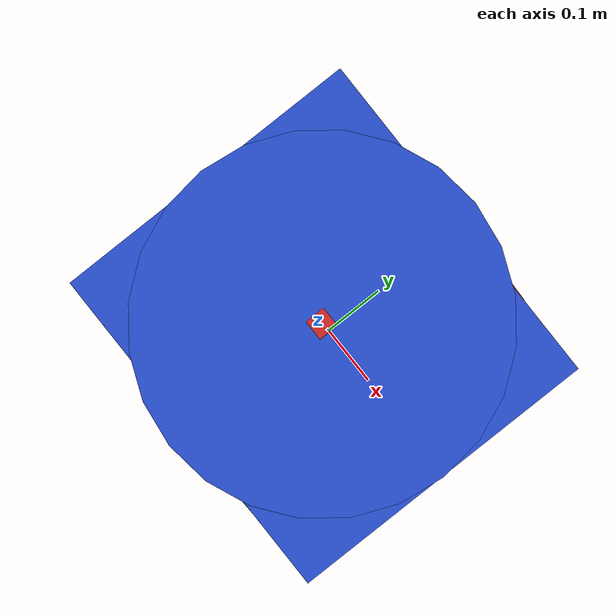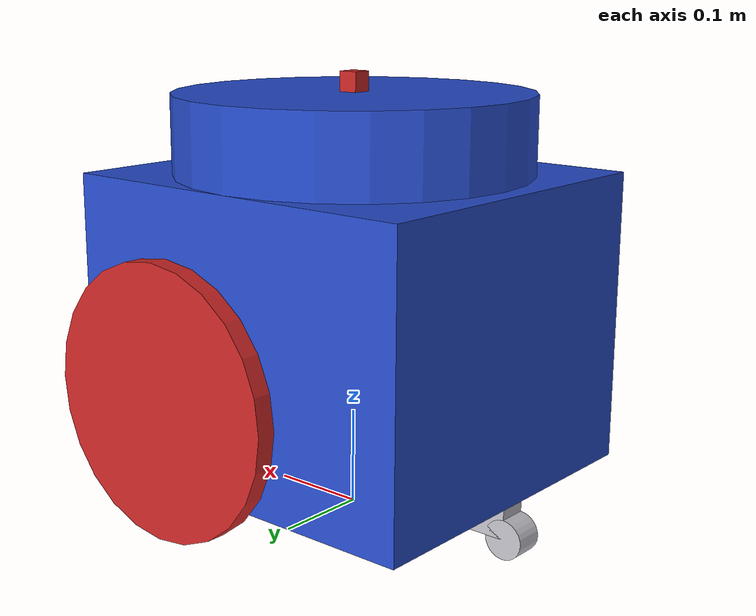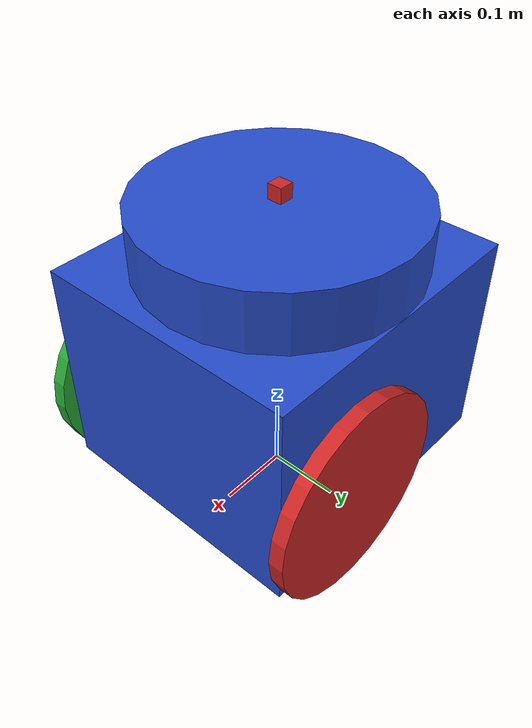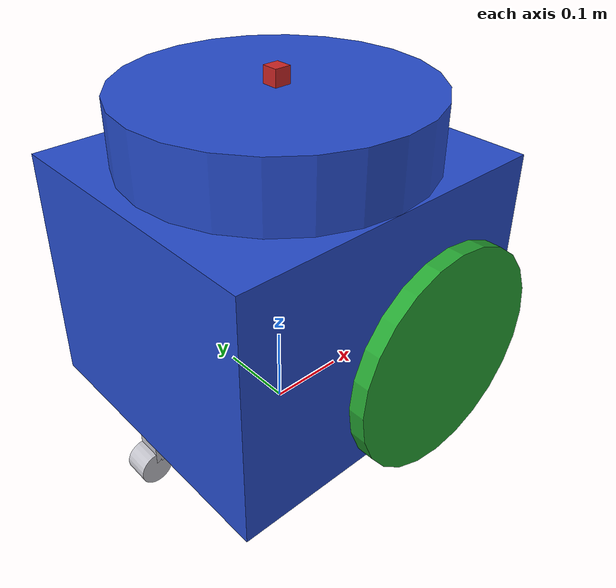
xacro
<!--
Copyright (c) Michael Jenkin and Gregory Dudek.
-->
<?xml version="1.0"?>

<robot name="$(arg name)" xmlns:xacro="http://www.ros.org/wiki/xacro">

  <!-- Define the robot -->
  <xacro:property name="robot_base_width" value="0.36" />
  <xacro:property name="robot_base_length" value="0.4" />
  <xacro:property name="robot_base_height" value="0.3" />
  <xacro:property name="robot_base_mass" value="4.5" />
  <xacro:property name="robot_sonar_radius" value="0.18" />
  <xacro:property name="robot_sonar_height" value="0.08" />
  <xacro:property name="robot_wheel_zoffset" value="-0.06" />
  <xacro:property name="robot_wheel_xoffset" value="0.08" />
  <xacro:property name="robot_wheel_radius" value="0.14" />
  <xacro:property name="robot_wheel_width" value="0.02" />
  <xacro:property name="robot_caster_link_height" value="0.03" />
  <xacro:property name="robot_caster_link_width" value="0.03" />
  <xacro:property name="robot_caster_link_length" value="0.05" />
  <xacro:property name="robot_caster_link_offset" value="-0.025" />
  <xacro:property name="robot_caster_joint_offset" value="-0.15" />
  <xacro:property name="robot_caster_wheel_radius" value="0.02" />
  <xacro:property name="imu_width" value="0.02" />
  <xacro:property name="imu_height" value="0.02" />
  <xacro:property name="imu_length" value="0.02" />

  <!-- Import colors defined externally -->
  <xacro:include filename="$(find cpmr_ch4)/colors.xacro" />

  <!-- Define macros to make moments of inertia easier -->
  <xacro:macro name="I_cylinder" params="m r h">
    <inertial>
      <mass value="${m}" />
      <inertia  ixx="${m*(3*r*r+h*h)/12}" iyy="${m*(3*r*r+h*h)/12}" izz="${m*r*r/2}"
              ixy = "0" ixz = "0" iyz = "0" />
    </inertial>
  </xacro:macro>
  <xacro:macro name="I_cuboid" params="m x y z">
    <inertial>
      <mass value="${m}" />
      <inertia  ixx="${m*(y*y+z*z)/12}" iyy="${m*(x*x+z*z)/12}" izz="${m*(x*x+z*z)/12}"
                ixy = "0" ixz = "0" iyz = "0" />
    </inertial>
  </xacro:macro>

  <!-- robot footprint -->
  <link name="base_footprint">
  </link>

  <!-- Base -->
  <gazebo reference="base_link">
    <material>Gazebo/Blue</material>
  </gazebo>
  <link name="base_link">
    <visual>
      <geometry>
        <box size="${robot_base_length} ${robot_base_width} ${robot_base_height}" />
      </geometry>
      <material name="blue"/>
    </visual>
    <collision>
      <geometry>
        <box size="${robot_base_length} ${robot_base_width} ${robot_base_height}" />
      </geometry>
    </collision>
    <xacro:I_cuboid m="8.4" x="${robot_base_length}" y="${robot_base_width}" z="${robot_base_height}" />
  </link>

  <!-- Sonar unit -->
  <gazebo reference="sonar_link">
    <material>Gazebo/Blue</material>
  </gazebo>
  <link name="sonar_link">
    <visual>
      <geometry>
        <cylinder length="${robot_sonar_height}" radius="${robot_sonar_radius}" />
      </geometry>
      <material name="blue"/>
    </visual>
    <collision>
      <geometry>
        <cylinder length="${robot_sonar_height}" radius="${robot_sonar_radius}" />
      </geometry>
    </collision>
    <xacro:I_cylinder m="8.4" r="${robot_sonar_radius}" h="${robot_sonar_height}" />
  </link>

  <joint name="base_joint" type="fixed">
    <origin xyz="0.0 0.0 ${robot_wheel_radius-robot_wheel_zoffset}" rpy="0.0 0.0 0.0" />
    <parent link="base_footprint" />
    <child link="base_link" />
    <axis xyz="0 0 1" />
  </joint>

  <joint name="sonar_joint" type="fixed">
    <origin xyz="0.0 0.0 ${robot_base_height/2+robot_sonar_height/2}" rpy="0.0 0.0 0.0" />
    <parent link="base_link" />
    <child link="sonar_link" />
    <axis xyz="0 0 1" />
  </joint>

  <!-- Left wheel -->
  <gazebo reference="left_wheel_link">
    <material>Gazebo/Red</material>
  </gazebo>
  <link name="left_wheel_link">
    <visual>
      <geometry>
        <cylinder length="${robot_wheel_width}" radius="${robot_wheel_radius}" />
      </geometry>
      <material name="red" />
    </visual>
    <collision>
      <geometry>
        <cylinder length="${robot_wheel_width}" radius="${robot_wheel_radius}" />
      </geometry>
    </collision>
    <xacro:I_cylinder m="0.1" r="${robot_wheel_radius}" h="${robot_wheel_width}" />
  </link>

  <joint name="left_wheel_joint" type="continuous">
    <axis xyz="0 0 1" />
    <parent link="base_link" />
    <child link="left_wheel_link" />
    <origin rpy="-1.5708 0 0" xyz="${robot_wheel_xoffset} ${robot_base_width/2+robot_wheel_width/2} ${robot_wheel_zoffset}" />
  </joint>

  <!-- Right wheel -->
  <gazebo reference="right_wheel_link">
    <material>Gazebo/Green</material>
  </gazebo>
  <link name="right_wheel_link">
    <visual>
      <geometry>
        <cylinder length="${robot_wheel_width}" radius="${robot_wheel_radius}" />
      </geometry>
      <material name="green" />
    </visual>
    <collision>
      <geometry>
        <cylinder length="${robot_wheel_width}" radius="${robot_wheel_radius}" />
      </geometry>
    </collision>
    <xacro:I_cylinder m="0.1" r="${robot_wheel_radius}" h="${robot_wheel_width}" />
  </link>

  <joint name="right_wheel_joint" type="continuous">
    <axis xyz="0 0 1" />
    <parent link="base_link" />
    <child link="right_wheel_link" />
    <origin rpy="-1.5708 0 0" xyz="${robot_wheel_xoffset} ${-robot_base_width/2-robot_wheel_width/2} ${robot_wheel_zoffset}" />
  </joint>

  <!-- Caster 'wheel' structure -->
  <gazebo reference="caster_link">
    <material>Gazebo/Silver</material>
  </gazebo>

  <link name="caster_link">
    <visual>
      <origin xyz="${robot_caster_link_length/2} 0 0" rpy="0 0 0" />
      <geometry>
        <box size="${robot_caster_link_length} ${robot_caster_link_width} ${robot_caster_link_height}" />
      </geometry>
      <material name="silver"/>
    </visual>
    <collision>
      <origin xyz="${robot_caster_link_length/2} 0 0" rpy="0 0 0" />
      <geometry>
        <box size="${robot_caster_link_length} ${robot_caster_link_width} ${robot_caster_link_height}" />
      </geometry>
    </collision>
    <xacro:I_cuboid m="0.1" x="${robot_caster_link_length}" y="${robot_caster_link_width}" z="${robot_caster_link_height}" />
  </link>

  <joint name="caster_joint" type="continuous">
    <axis xyz="0 0 1" />
    <parent link="base_link" />
    <child link="caster_link" />
    <origin rpy="0 0 3.1415" xyz="${robot_caster_joint_offset} 0 ${-robot_base_height/2-robot_caster_link_height/2}" />
  </joint>

  <!-- caster wheel -->
  <gazebo reference="caster_wheel_link">
    <material>Gazebo/Silver</material>
  </gazebo>
  <link name="caster_wheel_link">
    <visual>
      <geometry>
        <cylinder length="${robot_caster_link_height}" radius="${robot_caster_wheel_radius}" />
      </geometry>
      <material name="silver" />
    </visual>
    <collision>
      <geometry>
        <cylinder length="${robot_caster_link_height}" radius="${robot_caster_wheel_radius}" />
      </geometry>
    </collision>
    <xacro:I_cylinder m="0.1" r="${robot_caster_wheel_radius}" h="${robot_caster_link_height}" />
  </link>

  <joint name="caster_wheel_joint" type="continuous">
    <axis xyz="0 0 1" />
    <child link="caster_wheel_link" />
    <parent link="caster_link" />
    <origin rpy="1.5708 0 0" xyz="${robot_caster_link_length} 0 ${-robot_caster_link_height/2}" />
  </joint>

  <!-- IMU unit -->
  <gazebo reference="imu_link">
    <material>Gazebo/Red</material>
  </gazebo>
  <link name="imu_link">
    <visual>
      <geometry>
        <box size="${imu_length} ${imu_width} ${imu_height}" />
      </geometry>
      <material name="red"/>
    </visual>
    <collision>
      <geometry>
        <box size="${imu_length} ${imu_width} ${imu_height}" />
      </geometry>
    </collision>
    <xacro:I_cuboid m="0.01" x="${imu_length}" y="${imu_width}" z="${imu_height}" />
  </link>

  <joint name="imu_joint" type="fixed">
    <origin xyz="0.0 0.0 ${robot_sonar_height/2+imu_height/2}" rpy="0.0 0.0 0.0" />
    <parent link="sonar_link" />
    <child link="imu_link" />
    <axis xyz="0 0 1" />
  </joint>

  <gazebo reference="imu_link">
    <gravity>true</gravity>
    <sensor name="imu_sensor" type="imu">
      <always_on>true</always_on>
      <update_rate>100</update_rate>
      <plugin name="imu_publisher" filename="libgazebo_ros_imu_sensor.so">
        <ros>
          <remapping>~/out:=imu</remapping>
          <initial_orientation_as_reference>false</initial_orientation_as_reference>
        </ros>
      </plugin>
    </sensor>
  </gazebo>

  <gazebo>
    <plugin name="joint_state_publisher" filename="libgazebo_ros_joint_state_publisher.so">
      <joint_name>caster_wheel_joint</joint_name>
      <joint_name>caster_joint</joint_name>
      <joint_name>left_wheel_joint</joint_name>
      <joint_name>right_wheel_joint</joint_name>
      <update_rate>100</update_rate>
    </plugin>
  </gazebo>

  <gazebo>
    <plugin name="differential_drive_controller" filename="libgazebo_ros_diff_drive.so">
      <update_rate>20</update_rate>
      <left_joint>left_wheel_joint</left_joint>
      <right_joint>right_wheel_joint</right_joint>
      <robotBaseFrame>base_footprint</robotBaseFrame>
      <wheel_separation>${robot_base_width+robot_wheel_width}</wheel_separation>
      <wheel_diameter>${2*robot_wheel_radius}</wheel_diameter>
      <publish_odom>true</publish_odom>
      <publish_odom_tf>true</publish_odom_tf>
      <publish_wheel_tf>true</publish_wheel_tf>
      <odometry_frame>odom</odometry_frame>
      <robot_base_frame>base_footprint</robot_base_frame>
      <command_topic>cmd_vel</command_topic>
    </plugin>
  </gazebo>
</robot>
